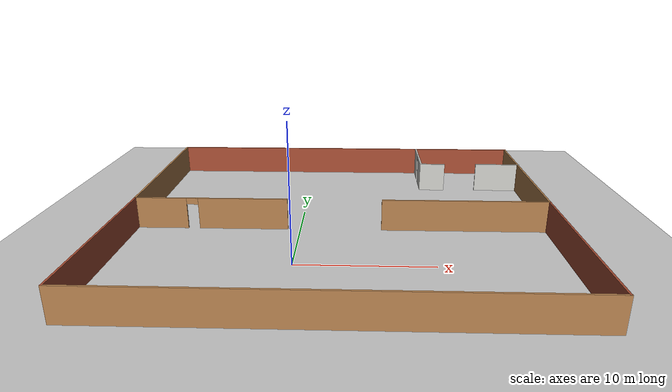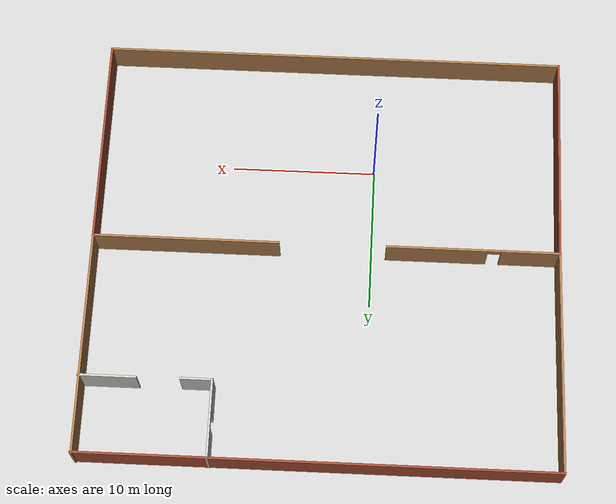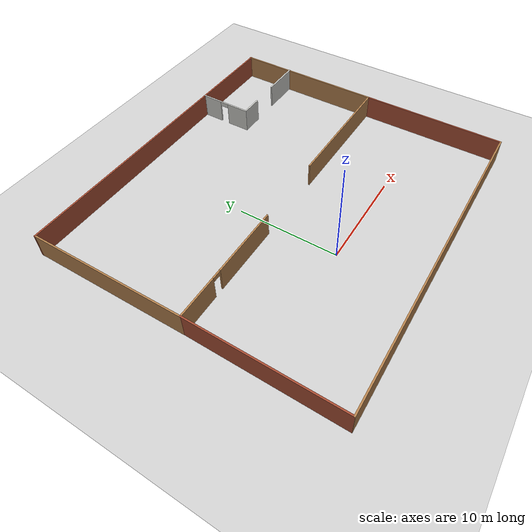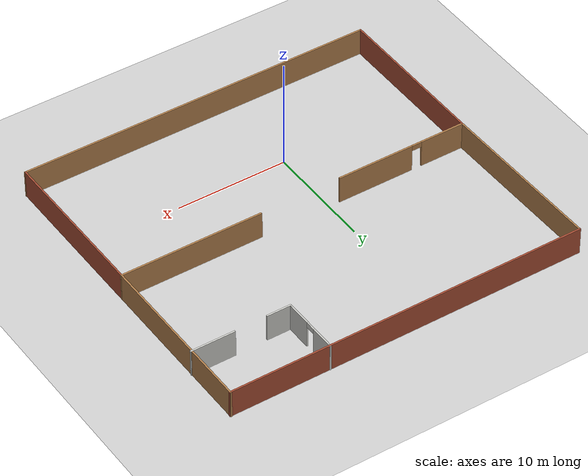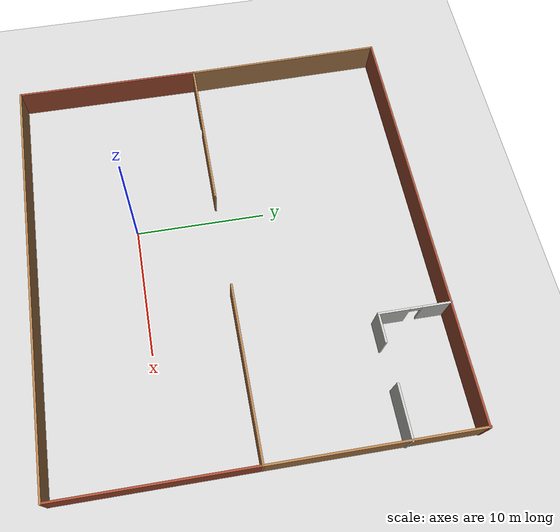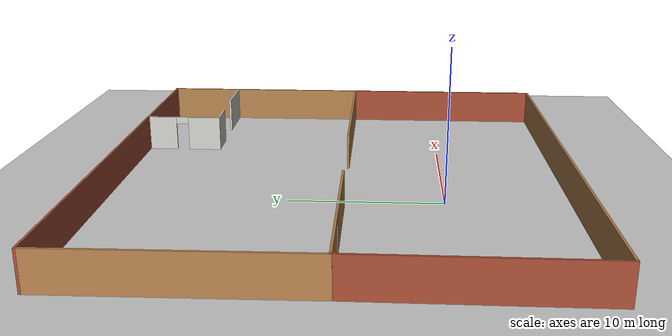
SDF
<sdf version="1.7">
 <world name="default">
  <light name="sun" type="directional">
   <pose>0 0 10 0 -0 0</pose>
   <diffuse>0.8 0.8 0.8 1</diffuse>
   <specular>0.2 0.2 0.2 1</specular>
   <attenuation>
    <range>1000</range>
    <constant>0.9</constant>
    <linear>0.01</linear>
    <quadratic>0.001</quadratic>
   </attenuation>
   <direction>-0.5 0.1 -0.9</direction>
   <spot><inner_angle>0</inner_angle><outer_angle>0</outer_angle><falloff>0</falloff></spot>
  </light>
  <model name="ground_plane">
   <static>1</static>
   <link name="link">
    <collision name="collision">
     <geometry><plane><normal>0 0 1</normal><size>100 100</size></plane></geometry>
     <surface>
      <contact><collide_bitmask>65535</collide_bitmask></contact>
      <friction><ode><mu>100</mu><mu2>50</mu2></ode></friction>
     </surface>
    </collision>
    <visual name="visual">
     <cast_shadows>0</cast_shadows>
     <geometry><plane><normal>0 0 1</normal><size>100 100</size></plane></geometry>
     <material>
      <script><uri>file://media/materials/scripts/gazebo.material</uri><name>Gazebo/Grey</name></script>
     </material>
    </visual>
   </link>
  </model>
  <gravity>0 0 -9.8</gravity>
  <magnetic_field>6e-06 2.3e-05 -4.2e-05</magnetic_field>
  <atmosphere type="adiabatic"/>
  <physics type="ode">
   <max_step_size>0.001</max_step_size>
   <real_time_factor>1</real_time_factor>
   <real_time_update_rate>1000</real_time_update_rate>
  </physics>
  <scene><ambient>0.4 0.4 0.4 1</ambient><background>0.7 0.7 0.7 1</background><shadows>1</shadows></scene>
  <spherical_coordinates>
   <surface_model>EARTH_WGS84</surface_model>
   <latitude_deg>0</latitude_deg>
   <longitude_deg>0</longitude_deg>
   <elevation>0</elevation>
   <heading_deg>0</heading_deg>
  </spherical_coordinates>
  <model name="Office_Building">
   <pose>3.05593 6.8747 0 0 -0 0</pose>
   <link name="Wall_14">
    <pose>7.22107 12.1635 0 0 -0 -1.5708</pose>
    <visual name="Wall_14_Visual_0">
     <pose>-1.63756 0 1.25 0 -0 0</pose>
     <geometry><box><size>2.22489 0.15 2.5</size></box></geometry>
     <material>
      <script><uri>file://media/materials/scripts/gazebo.material</uri><name>Gazebo/CeilingTiled</name></script>
      <ambient>1 1 1 1</ambient>
     </material>
     <meta><layer>0</layer></meta>
    </visual>
    <collision name="Wall_14_Collision_0">
     <geometry><box><size>2.22489 0.15 2.5</size></box></geometry>
     <pose>-1.63756 0 1.25 0 -0 0</pose>
    </collision>
    <visual name="Wall_14_Visual_1">
     <pose>1.56244 0 1.25 0 -0 0</pose>
     <geometry><box><size>2.37511 0.15 2.5</size></box></geometry>
     <material>
      <script><uri>file://media/materials/scripts/gazebo.material</uri><name>Gazebo/CeilingTiled</name></script>
      <ambient>1 1 1 1</ambient>
     </material>
     <meta><layer>0</layer></meta>
    </visual>
    <collision name="Wall_14_Collision_1">
     <geometry><box><size>2.37511 0.15 2.5</size></box></geometry>
     <pose>1.56244 0 1.25 0 -0 0</pose>
    </collision>
    <visual name="Wall_14_Visual_2">
     <pose>-0.075111 0 2.25 0 -0 0</pose>
     <geometry><box><size>0.9 0.15 0.5</size></box></geometry>
     <material>
      <script><uri>file://media/materials/scripts/gazebo.material</uri><name>Gazebo/CeilingTiled</name></script>
      <ambient>1 1 1 1</ambient>
     </material>
     <meta><layer>0</layer></meta>
    </visual>
    <collision name="Wall_14_Collision_2">
     <geometry><box><size>0.9 0.15 0.5</size></box></geometry>
     <pose>-0.075111 0 2.25 0 -0 0</pose>
    </collision>
   </link>
   <link name="Wall_15">
    <collision name="Wall_15_Collision">
     <geometry><box><size>2.25 0.15 2.5</size></box></geometry>
     <pose>0 0 1.25 0 -0 0</pose>
    </collision>
    <visual name="Wall_15_Visual">
     <pose>0 0 1.25 0 -0 0</pose>
     <geometry><box><size>2.25 0.15 2.5</size></box></geometry>
     <material>
      <script><uri>file://media/materials/scripts/gazebo.material</uri><name>Gazebo/CeilingTiled</name></script>
      <ambient>1 1 1 1</ambient>
     </material>
     <meta><layer>0</layer></meta>
    </visual>
    <pose>8.27107 9.4885 0 0 -0 0</pose>
   </link>
   <link name="Wall_18">
    <collision name="Wall_18_Collision">
     <geometry><box><size>4 0.15 2.5</size></box></geometry>
     <pose>0 0 1.25 0 -0 0</pose>
    </collision>
    <visual name="Wall_18_Visual">
     <pose>0 0 1.25 0 -0 0</pose>
     <geometry><box><size>4 0.15 2.5</size></box></geometry>
     <material>
      <script><uri>file://media/materials/scripts/gazebo.material</uri><name>Gazebo/CeilingTiled</name></script>
      <ambient>1 1 1 1</ambient>
     </material>
     <meta><layer>0</layer></meta>
    </visual>
    <pose>14.2609 9.54223 0 0 -0 0</pose>
   </link>
   <link name="Wall_24">
    <collision name="Wall_24_Collision">
     <geometry><box><size>12.916 0.15 2.5</size></box></geometry>
     <pose>0 0 1.25 0 -0 0</pose>
    </collision>
    <visual name="Wall_24_Visual">
     <pose>0 0 1.25 0 -0 0</pose>
     <geometry><box><size>12.916 0.15 2.5</size></box></geometry>
     <material>
      <script><uri>file://media/materials/scripts/gazebo.material</uri><name>Gazebo/Wood</name></script>
      <ambient>1 1 1 1</ambient>
     </material>
     <meta><layer>0</layer></meta>
    </visual>
    <pose>9.73979 -0.462296 0 0 -0 0</pose>
   </link>
   <link name="Wall_27">
    <collision name="Wall_27_Collision">
     <geometry><box><size>15.3431 0.15 2.5</size></box></geometry>
     <pose>0 0 1.25 0 -0 0</pose>
    </collision>
    <visual name="Wall_27_Visual">
     <pose>0 0 1.25 0 -0 0</pose>
     <geometry><box><size>15.3431 0.15 2.5</size></box></geometry>
     <material>
      <script><uri>file://media/materials/scripts/gazebo.material</uri><name>Gazebo/Wood</name></script>
      <ambient>1 1 1 1</ambient>
     </material>
     <meta><layer>0</layer></meta>
    </visual>
    <pose>-16.0769 7.10332 0 0 -0 1.5841</pose>
   </link>
   <link name="Wall_31">
    <collision name="Wall_31_Collision">
     <geometry><box><size>14.5 0.15 2.5</size></box></geometry>
     <pose>0 0 1.25 0 -0 0</pose>
    </collision>
    <visual name="Wall_31_Visual">
     <pose>0 0 1.25 0 -0 0</pose>
     <geometry><box><size>14.5 0.15 2.5</size></box></geometry>
     <material>
      <script><uri>file://media/materials/scripts/gazebo.material</uri><name>Gazebo/Bricks</name></script>
      <ambient>1 1 1 1</ambient>
     </material>
     <meta><layer>0</layer></meta>
    </visual>
    <pose>16.1226 -7.6584 0 0 -0 -1.5708</pose>
   </link>
   <link name="Wall_33">
    <collision name="Wall_33_Collision">
     <geometry><box><size>32.25 0.15 2.5</size></box></geometry>
     <pose>0 0 1.25 0 -0 0</pose>
    </collision>
    <visual name="Wall_33_Visual">
     <pose>0 0 1.25 0 -0 0</pose>
     <geometry><box><size>32.25 0.15 2.5</size></box></geometry>
     <material>
      <script><uri>file://media/materials/scripts/gazebo.material</uri><name>Gazebo/Wood</name></script>
      <ambient>1 1 1 1</ambient>
     </material>
     <meta><layer>0</layer></meta>
    </visual>
    <pose>0.087438 -14.8666 0 0 -0 0</pose>
   </link>
   <link name="Wall_41">
    <pose>-10.0417 -0.492513 0 0 -0 3.14159</pose>
    <visual name="Wall_41_Visual_0">
     <pose>-2.501 0 1.25 0 -0 0</pose>
     <geometry><box><size>6.99801 0.15 2.5</size></box></geometry>
     <material>
      <script><uri>file://media/materials/scripts/gazebo.material</uri><name>Gazebo/Wood</name></script>
      <ambient>1 1 1 1</ambient>
     </material>
     <meta><layer>0</layer></meta>
    </visual>
    <collision name="Wall_41_Collision_0">
     <geometry><box><size>6.99801 0.15 2.5</size></box></geometry>
     <pose>-2.501 0 1.25 0 -0 0</pose>
    </collision>
    <visual name="Wall_41_Visual_1">
     <pose>3.94901 0 1.25 0 -0 0</pose>
     <geometry><box><size>4.10199 0.15 2.5</size></box></geometry>
     <material>
      <script><uri>file://media/materials/scripts/gazebo.material</uri><name>Gazebo/Wood</name></script>
      <ambient>1 1 1 1</ambient>
     </material>
     <meta><layer>0</layer></meta>
    </visual>
    <collision name="Wall_41_Collision_1">
     <geometry><box><size>4.10199 0.15 2.5</size></box></geometry>
     <pose>3.94901 0 1.25 0 -0 0</pose>
    </collision>
    <visual name="Wall_41_Visual_2">
     <pose>1.44801 0 2.25 0 -0 0</pose>
     <geometry><box><size>0.9 0.15 0.5</size></box></geometry>
     <material>
      <script><uri>file://media/materials/scripts/gazebo.material</uri><name>Gazebo/Wood</name></script>
      <ambient>1 1 1 1</ambient>
     </material>
     <meta><layer>0</layer></meta>
    </visual>
    <collision name="Wall_41_Collision_2">
     <geometry><box><size>0.9 0.15 0.5</size></box></geometry>
     <pose>1.44801 0 2.25 0 -0 0</pose>
    </collision>
   </link>
   <link name="Wall_43">
    <collision name="Wall_43_Collision">
     <geometry><box><size>14.5 0.15 2.5</size></box></geometry>
     <pose>0 0 1.25 0 -0 0</pose>
    </collision>
    <visual name="Wall_43_Visual">
     <pose>0 0 1.25 0 -0 0</pose>
     <geometry><box><size>14.5 0.15 2.5</size></box></geometry>
     <material>
      <script><uri>file://media/materials/scripts/gazebo.material</uri><name>Gazebo/Bricks</name></script>
      <ambient>1 1 1 1</ambient>
     </material>
     <meta><layer>0</layer></meta>
    </visual>
    <pose>-15.9667 -7.66751 0 0 -0 -1.5708</pose>
   </link>
   <link name="Wall_45">
    <collision name="Wall_45_Collision">
     <geometry><box><size>15.5 0.15 2.5</size></box></geometry>
     <pose>0 0 1.25 0 -0 0</pose>
    </collision>
    <visual name="Wall_45_Visual">
     <pose>0 0 1.25 0 -0 0</pose>
     <geometry><box><size>15.5 0.15 2.5</size></box></geometry>
     <material>
      <script><uri>file://media/materials/scripts/gazebo.material</uri><name>Gazebo/Wood</name></script>
      <ambient>1 1 1 1</ambient>
     </material>
     <meta><layer>0</layer></meta>
    </visual>
    <pose>16.1226 7.1916 0 0 -0 1.5708</pose>
   </link>
   <link name="Wall_8">
    <collision name="Wall_8_Collision">
     <geometry><box><size>32.5 0.15 2.5</size></box></geometry>
     <pose>0 0 1.25 0 -0 0</pose>
    </collision>
    <visual name="Wall_8_Visual">
     <pose>0 0 1.25 0 -0 0</pose>
     <geometry><box><size>32.5 0.15 2.5</size></box></geometry>
     <material>
      <script><uri>file://media/materials/scripts/gazebo.material</uri><name>Gazebo/Bricks</name></script>
      <ambient>1 1 1 1</ambient>
     </material>
     <meta><layer>0</layer></meta>
    </visual>
    <pose>-0.010919 14.8106 0 0 -0 0</pose>
   </link>
   <static>1</static>
  </model>
 </world>
</sdf>
